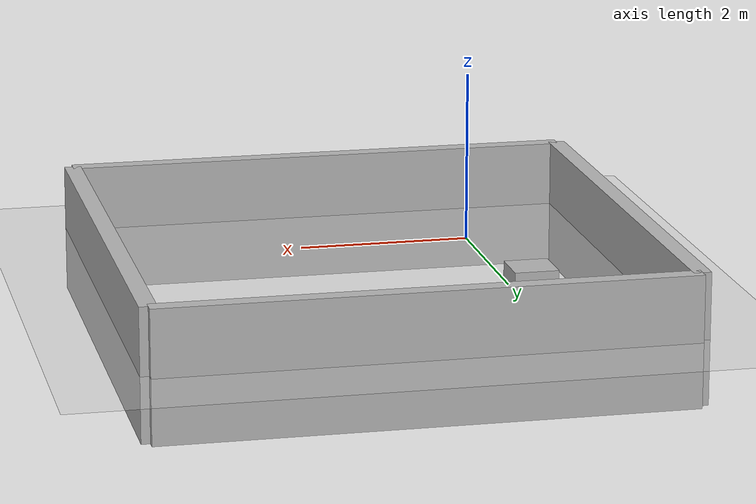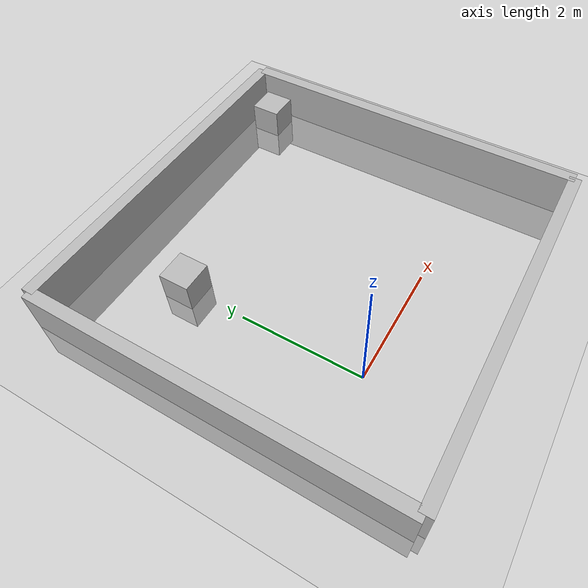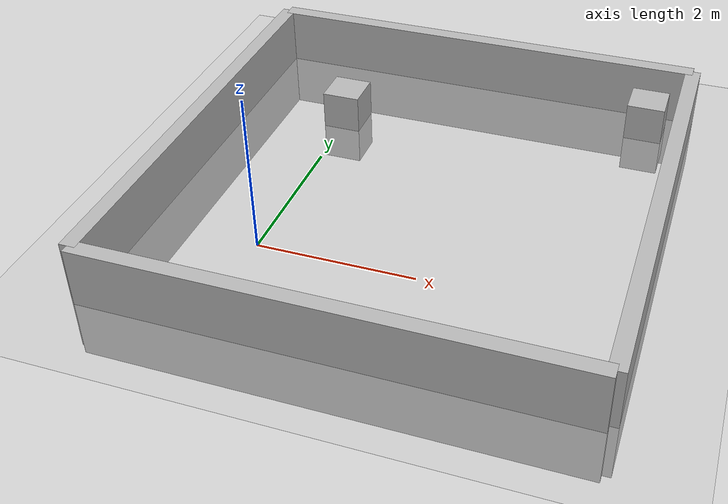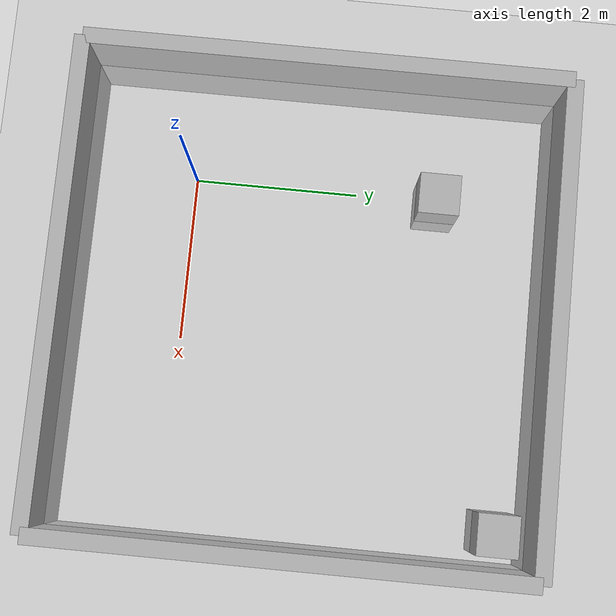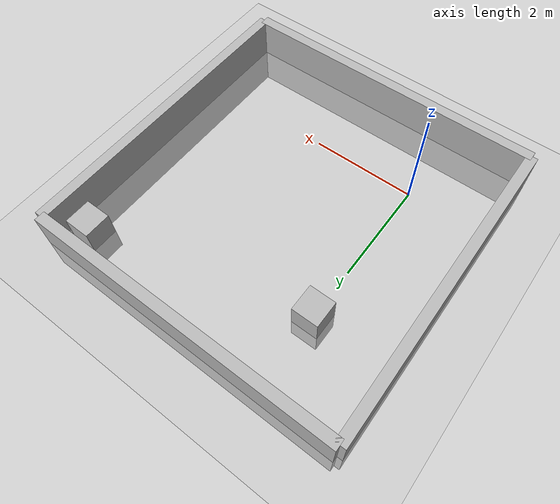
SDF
<?xml version="1.0"?>
<sdf version="1.6">
  <world name="simple_room">
    <include>
      <uri>model://sun</uri>
    </include>
    <include>
      <uri>model://ground_plane</uri>
    </include>

    <!-- Walls -->
    <model name="wall_north">
      <static>true</static>
      <link name="link">
        <collision name="collision">
          <geometry>
            <box>
              <size>6 0.2 1.5</size>
            </box>
          </geometry>
        </collision>
        <visual name="visual">
          <geometry>
            <box>
              <size>6 0.2 1.5</size>
            </box>
          </geometry>
        </visual>
        <pose>1.5 4.5 0 0 0 0</pose>
      </link>
    </model>

    <model name="wall_south">
      <static>true</static>
      <link name="link">
        <collision name="collision">
          <geometry>
            <box>
              <size>6 0.2 1.5</size>
            </box>
          </geometry>
        </collision>
        <visual name="visual">
          <geometry>
            <box>
              <size>6 0.2 1.5</size>
            </box>
          </geometry>
        </visual>
        <pose>1.5 -1.5 0 0 0 0</pose>
      </link>
    </model>

    <model name="wall_east">
      <static>true</static>
      <link name="link">
        <collision name="collision">
          <geometry>
            <box>
              <size>0.2 6 1.5</size>
            </box>
          </geometry>
        </collision>
        <visual name="visual">
          <geometry>
            <box>
              <size>0.2 6 1.5</size>
            </box>
          </geometry>
        </visual>
        <pose>4.5 1.5 0 0 0 0</pose>
      </link>
    </model>

    <model name="wall_west">
      <static>true</static>
      <link name="link">
        <collision name="collision">
          <geometry>
            <box>
              <size>0.2 6 1.5</size>
            </box>
          </geometry>
        </collision>
        <visual name="visual">
          <geometry>
            <box>
              <size>0.2 6 1.5</size>
            </box>
          </geometry>
        </visual>
        <pose>-1.5 1.5 0 0 0 0</pose>
      </link>
    </model>

    <!-- Example Obstacle -->
    <model name="obstacle_1">
      <static>true</static>
      <pose>4 4 0 0 0 0</pose>
      <link name="link">
        <collision name="collision">
          <geometry>
            <box>
              <size>0.5 0.5 1</size>
            </box>
          </geometry>
        </collision>
        <visual name="visual">
          <geometry>
            <box>
              <size>0.5 0.5 1</size>
            </box>
          </geometry>
        </visual>
      </link>
    </model>
    <model name="obstacle_2">
      <static>true</static>
      <pose>0 3 0 0 0 0</pose>
      <link name="link">
        <collision name="collision">
          <geometry>
            <box>
              <size>0.5 0.5 1</size>
            </box>
          </geometry>
        </collision>
        <visual name="visual">
          <geometry>
            <box>
              <size>0.5 0.5 1</size>
            </box>
          </geometry>
        </visual>
      </link>
    </model>

  </world>
</sdf>
